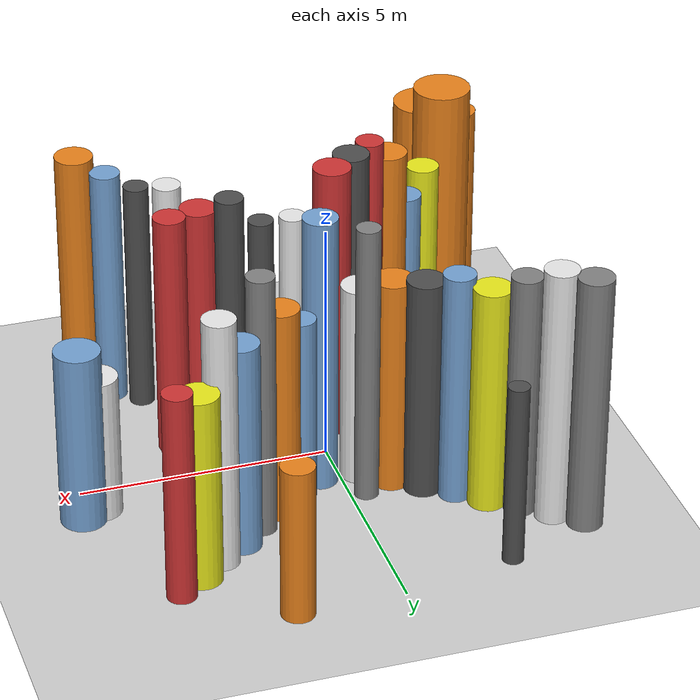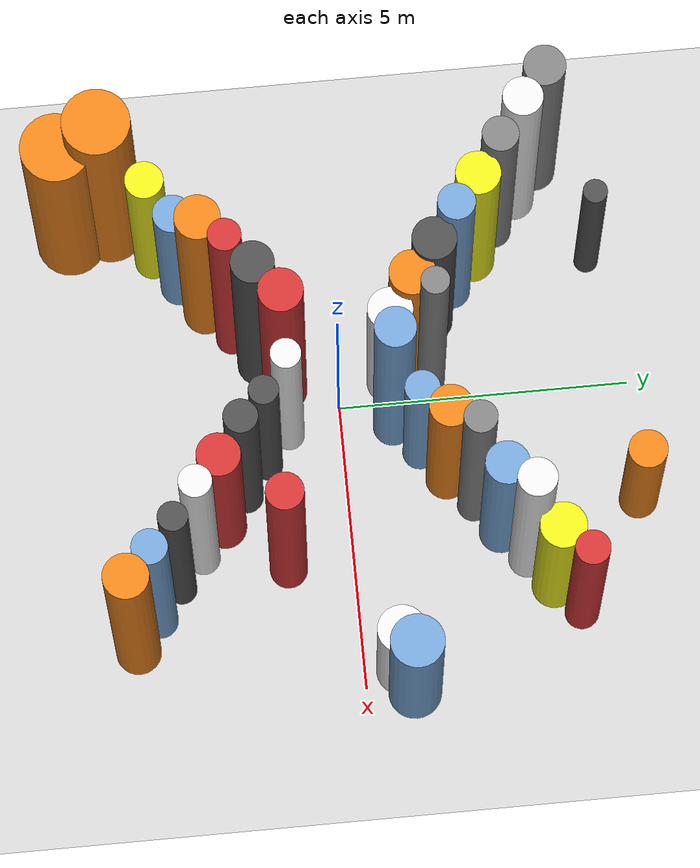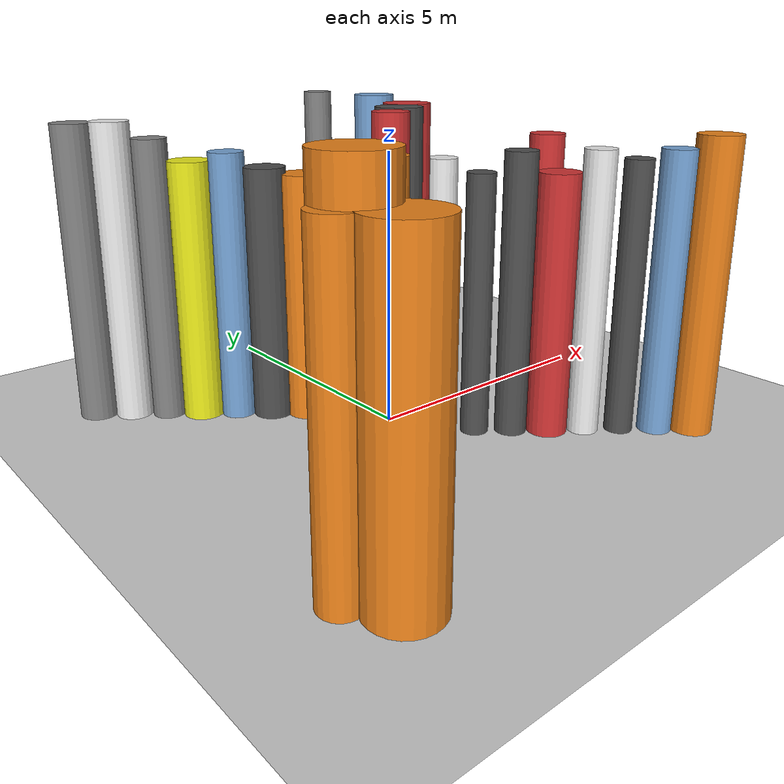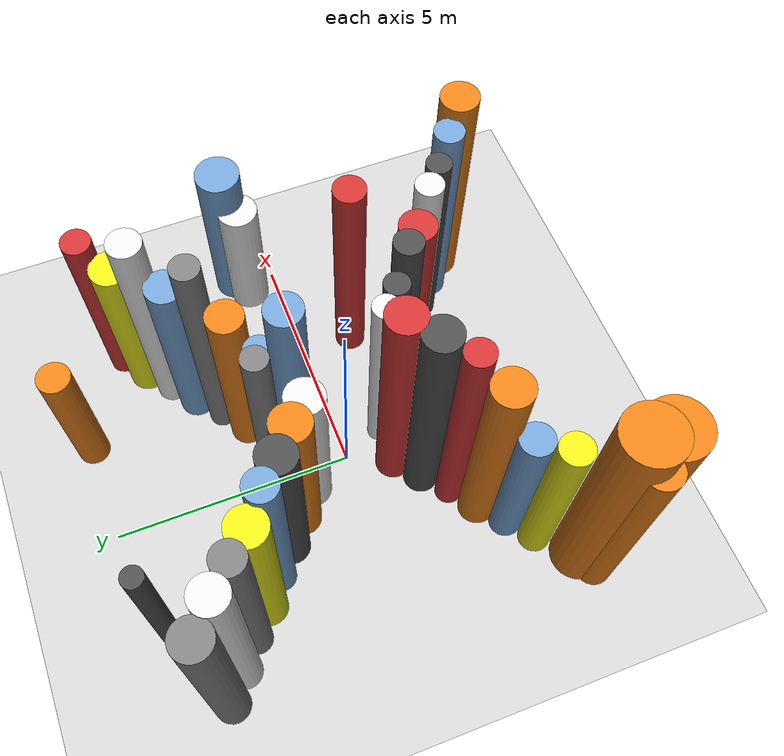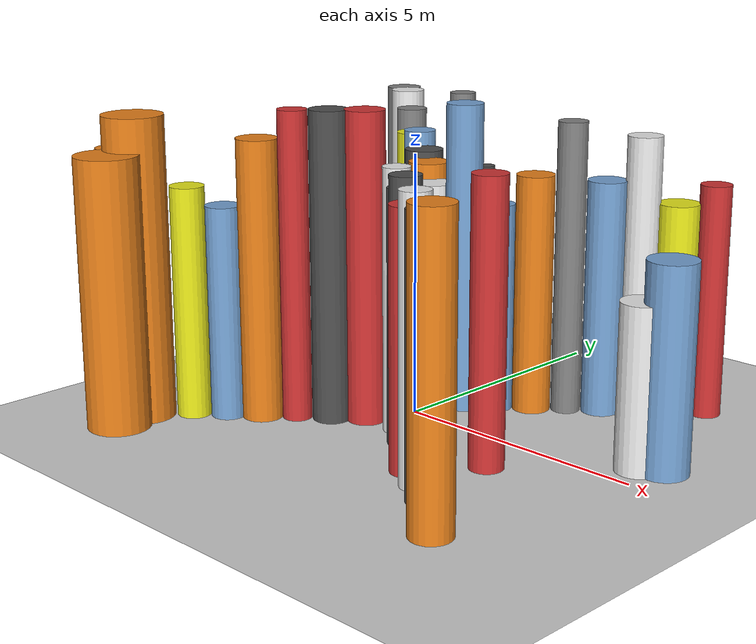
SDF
<?xml version='1.0'?>
<sdf version='1.6'>
  <world name='routeA_rl_v1__dense_recovery__rl_val__bottleneck_corridor__000017'>
    <!-- Sun light -->
    <light name='sun' type='directional'>
      <cast_shadows>1</cast_shadows>
      <pose>0 0 10 0 0 0</pose>
      <diffuse>0.8 0.8 0.8 1</diffuse>
      <specular>0.2 0.2 0.2 1</specular>
      <attenuation>
        <range>1000</range>
        <constant>0.9</constant>
        <linear>0.01</linear>
        <quadratic>0.001</quadratic>
      </attenuation>
      <direction>-0.5 0.1 -0.9</direction>
    </light>

    <!-- Ground plane -->
    <model name='ground_plane'>
      <static>1</static>
      <link name='link'>
        <collision name='collision'>
          <geometry>
            <plane>
              <normal>0 0 1</normal>
              <size>100 100</size>
            </plane>
          </geometry>
          <surface>
            <contact>
              <collide_bitmask>65535</collide_bitmask>
              <ode/>
            </contact>
            <friction>
              <ode>
                <mu>100</mu>
                <mu2>50</mu2>
              </ode>
              <torsional><ode/></torsional>
            </friction>
            <bounce/>
          </surface>
          <max_contacts>10</max_contacts>
        </collision>
        <visual name='visual'>
          <cast_shadows>0</cast_shadows>
          <geometry>
            <plane>
              <normal>0 0 1</normal>
              <size>100 100</size>
            </plane>
          </geometry>
          <material>
            <script>
              <uri>file://media/materials/scripts/gazebo.material</uri>
              <n>Gazebo/Grey</n>
            </script>
          </material>
        </visual>
      </link>
    </model>

    <!-- Environment -->
    <magnetic_field>6e-06 2.3e-05 -4.2e-05</magnetic_field>
    <atmosphere type='adiabatic'/>
    <physics name='default_physics' default='0' type='ode'>
      <gravity>0 0 -9.8</gravity>
      <max_step_size>0.004</max_step_size>
      <real_time_factor>1</real_time_factor>
      <real_time_update_rate>250</real_time_update_rate>
    </physics>
    <scene>
      <ambient>0.4 0.4 0.4 1</ambient>
      <background>0.7 0.7 0.7 1</background>
      <shadows>1</shadows>
    </scene>
    <wind/>
    <spherical_coordinates>
      <surface_model>EARTH_WGS84</surface_model>
      <latitude_deg>0</latitude_deg>
      <longitude_deg>0</longitude_deg>
      <elevation>0</elevation>
      <heading_deg>0</heading_deg>
    </spherical_coordinates>

    <!-- ============ OBSTACLES (40) ============ -->
    <model name='funnel_l_0'>
      <static>1</static>
      <link name='link'>
        <visual name='visual'>
          <geometry>
            <cylinder>
              <radius>0.3555</radius>
              <length>5.1101</length>
            </cylinder>
          </geometry>
          <material>
            <script>
              <n>Gazebo/Orange</n>
              <uri>file://media/materials/scripts/gazebo.material</uri>
            </script>
            <ambient>0.9 0.5 0.1 1</ambient>
          </material>
        </visual>
        <collision name='collision'>
          <geometry>
            <cylinder>
              <radius>0.3555</radius>
              <length>5.1101</length>
            </cylinder>
          </geometry>
          <max_contacts>10</max_contacts>
          <surface>
            <contact><ode/></contact>
            <bounce/>
            <friction>
              <ode><mu>1</mu><mu2>1</mu2></ode>
              <torsional><ode/></torsional>
            </friction>
          </surface>
        </collision>
      </link>
      <pose>-4.0000 -3.8000 2.5551 0 0 0.0000</pose>
    </model>

    <model name='funnel_r_0'>
      <static>1</static>
      <link name='link'>
        <visual name='visual'>
          <geometry>
            <cylinder>
              <radius>0.3564</radius>
              <length>5.4555</length>
            </cylinder>
          </geometry>
          <material>
            <script>
              <n>Gazebo/Grey</n>
              <uri>file://media/materials/scripts/gazebo.material</uri>
            </script>
            <ambient>0.5 0.5 0.5 1</ambient>
          </material>
        </visual>
        <collision name='collision'>
          <geometry>
            <cylinder>
              <radius>0.3564</radius>
              <length>5.4555</length>
            </cylinder>
          </geometry>
          <max_contacts>10</max_contacts>
          <surface>
            <contact><ode/></contact>
            <bounce/>
            <friction>
              <ode><mu>1</mu><mu2>1</mu2></ode>
              <torsional><ode/></torsional>
            </friction>
          </surface>
        </collision>
      </link>
      <pose>-4.0000 3.8000 2.7278 0 0 0.0000</pose>
    </model>

    <model name='funnel_l_1'>
      <static>1</static>
      <link name='link'>
        <visual name='visual'>
          <geometry>
            <cylinder>
              <radius>0.2524</radius>
              <length>5.1074</length>
            </cylinder>
          </geometry>
          <material>
            <script>
              <n>Gazebo/Red</n>
              <uri>file://media/materials/scripts/gazebo.material</uri>
            </script>
            <ambient>0.8 0.2 0.2 1</ambient>
          </material>
        </visual>
        <collision name='collision'>
          <geometry>
            <cylinder>
              <radius>0.2524</radius>
              <length>5.1074</length>
            </cylinder>
          </geometry>
          <max_contacts>10</max_contacts>
          <surface>
            <contact><ode/></contact>
            <bounce/>
            <friction>
              <ode><mu>1</mu><mu2>1</mu2></ode>
              <torsional><ode/></torsional>
            </friction>
          </surface>
        </collision>
      </link>
      <pose>-3.4857 -3.3857 2.5537 0 0 0.0000</pose>
    </model>

    <model name='funnel_r_1'>
      <static>1</static>
      <link name='link'>
        <visual name='visual'>
          <geometry>
            <cylinder>
              <radius>0.3427</radius>
              <length>5.4841</length>
            </cylinder>
          </geometry>
          <material>
            <script>
              <n>Gazebo/White</n>
              <uri>file://media/materials/scripts/gazebo.material</uri>
            </script>
            <ambient>0.9 0.9 0.9 1</ambient>
          </material>
        </visual>
        <collision name='collision'>
          <geometry>
            <cylinder>
              <radius>0.3427</radius>
              <length>5.4841</length>
            </cylinder>
          </geometry>
          <max_contacts>10</max_contacts>
          <surface>
            <contact><ode/></contact>
            <bounce/>
            <friction>
              <ode><mu>1</mu><mu2>1</mu2></ode>
              <torsional><ode/></torsional>
            </friction>
          </surface>
        </collision>
      </link>
      <pose>-3.4857 3.3857 2.7421 0 0 0.0000</pose>
    </model>

    <model name='funnel_l_2'>
      <static>1</static>
      <link name='link'>
        <visual name='visual'>
          <geometry>
            <cylinder>
              <radius>0.3266</radius>
              <length>4.4274</length>
            </cylinder>
          </geometry>
          <material>
            <script>
              <n>Gazebo/Yellow</n>
              <uri>file://media/materials/scripts/gazebo.material</uri>
            </script>
            <ambient>0.9 0.9 0.1 1</ambient>
          </material>
        </visual>
        <collision name='collision'>
          <geometry>
            <cylinder>
              <radius>0.3266</radius>
              <length>4.4274</length>
            </cylinder>
          </geometry>
          <max_contacts>10</max_contacts>
          <surface>
            <contact><ode/></contact>
            <bounce/>
            <friction>
              <ode><mu>1</mu><mu2>1</mu2></ode>
              <torsional><ode/></torsional>
            </friction>
          </surface>
        </collision>
      </link>
      <pose>-2.9714 -2.9714 2.2137 0 0 0.0000</pose>
    </model>

    <model name='funnel_r_2'>
      <static>1</static>
      <link name='link'>
        <visual name='visual'>
          <geometry>
            <cylinder>
              <radius>0.3106</radius>
              <length>5.1920</length>
            </cylinder>
          </geometry>
          <material>
            <script>
              <n>Gazebo/Grey</n>
              <uri>file://media/materials/scripts/gazebo.material</uri>
            </script>
            <ambient>0.5 0.5 0.5 1</ambient>
          </material>
        </visual>
        <collision name='collision'>
          <geometry>
            <cylinder>
              <radius>0.3106</radius>
              <length>5.1920</length>
            </cylinder>
          </geometry>
          <max_contacts>10</max_contacts>
          <surface>
            <contact><ode/></contact>
            <bounce/>
            <friction>
              <ode><mu>1</mu><mu2>1</mu2></ode>
              <torsional><ode/></torsional>
            </friction>
          </surface>
        </collision>
      </link>
      <pose>-2.9714 2.9714 2.5960 0 0 0.0000</pose>
    </model>

    <model name='funnel_l_3'>
      <static>1</static>
      <link name='link'>
        <visual name='visual'>
          <geometry>
            <cylinder>
              <radius>0.3323</radius>
              <length>4.0765</length>
            </cylinder>
          </geometry>
          <material>
            <script>
              <n>Gazebo/Blue</n>
              <uri>file://media/materials/scripts/gazebo.material</uri>
            </script>
            <ambient>0.447 0.624 0.812 1</ambient>
          </material>
        </visual>
        <collision name='collision'>
          <geometry>
            <cylinder>
              <radius>0.3323</radius>
              <length>4.0765</length>
            </cylinder>
          </geometry>
          <max_contacts>10</max_contacts>
          <surface>
            <contact><ode/></contact>
            <bounce/>
            <friction>
              <ode><mu>1</mu><mu2>1</mu2></ode>
              <torsional><ode/></torsional>
            </friction>
          </surface>
        </collision>
      </link>
      <pose>-2.4571 -2.5571 2.0382 0 0 0.0000</pose>
    </model>

    <model name='funnel_r_3'>
      <static>1</static>
      <link name='link'>
        <visual name='visual'>
          <geometry>
            <cylinder>
              <radius>0.3818</radius>
              <length>4.8031</length>
            </cylinder>
          </geometry>
          <material>
            <script>
              <n>Gazebo/Yellow</n>
              <uri>file://media/materials/scripts/gazebo.material</uri>
            </script>
            <ambient>0.9 0.9 0.1 1</ambient>
          </material>
        </visual>
        <collision name='collision'>
          <geometry>
            <cylinder>
              <radius>0.3818</radius>
              <length>4.8031</length>
            </cylinder>
          </geometry>
          <max_contacts>10</max_contacts>
          <surface>
            <contact><ode/></contact>
            <bounce/>
            <friction>
              <ode><mu>1</mu><mu2>1</mu2></ode>
              <torsional><ode/></torsional>
            </friction>
          </surface>
        </collision>
      </link>
      <pose>-2.4571 2.5571 2.4016 0 0 0.0000</pose>
    </model>

    <model name='funnel_l_4'>
      <static>1</static>
      <link name='link'>
        <visual name='visual'>
          <geometry>
            <cylinder>
              <radius>0.3885</radius>
              <length>5.3366</length>
            </cylinder>
          </geometry>
          <material>
            <script>
              <n>Gazebo/Orange</n>
              <uri>file://media/materials/scripts/gazebo.material</uri>
            </script>
            <ambient>0.9 0.5 0.1 1</ambient>
          </material>
        </visual>
        <collision name='collision'>
          <geometry>
            <cylinder>
              <radius>0.3885</radius>
              <length>5.3366</length>
            </cylinder>
          </geometry>
          <max_contacts>10</max_contacts>
          <surface>
            <contact><ode/></contact>
            <bounce/>
            <friction>
              <ode><mu>1</mu><mu2>1</mu2></ode>
              <torsional><ode/></torsional>
            </friction>
          </surface>
        </collision>
      </link>
      <pose>-1.9429 -2.1429 2.6683 0 0 0.0000</pose>
    </model>

    <model name='funnel_r_4'>
      <static>1</static>
      <link name='link'>
        <visual name='visual'>
          <geometry>
            <cylinder>
              <radius>0.3206</radius>
              <length>4.9564</length>
            </cylinder>
          </geometry>
          <material>
            <script>
              <n>Gazebo/Blue</n>
              <uri>file://media/materials/scripts/gazebo.material</uri>
            </script>
            <ambient>0.447 0.624 0.812 1</ambient>
          </material>
        </visual>
        <collision name='collision'>
          <geometry>
            <cylinder>
              <radius>0.3206</radius>
              <length>4.9564</length>
            </cylinder>
          </geometry>
          <max_contacts>10</max_contacts>
          <surface>
            <contact><ode/></contact>
            <bounce/>
            <friction>
              <ode><mu>1</mu><mu2>1</mu2></ode>
              <torsional><ode/></torsional>
            </friction>
          </surface>
        </collision>
      </link>
      <pose>-1.9429 2.1429 2.4782 0 0 0.0000</pose>
    </model>

    <model name='funnel_l_5'>
      <static>1</static>
      <link name='link'>
        <visual name='visual'>
          <geometry>
            <cylinder>
              <radius>0.2807</radius>
              <length>5.8708</length>
            </cylinder>
          </geometry>
          <material>
            <script>
              <n>Gazebo/Red</n>
              <uri>file://media/materials/scripts/gazebo.material</uri>
            </script>
            <ambient>0.8 0.2 0.2 1</ambient>
          </material>
        </visual>
        <collision name='collision'>
          <geometry>
            <cylinder>
              <radius>0.2807</radius>
              <length>5.8708</length>
            </cylinder>
          </geometry>
          <max_contacts>10</max_contacts>
          <surface>
            <contact><ode/></contact>
            <bounce/>
            <friction>
              <ode><mu>1</mu><mu2>1</mu2></ode>
              <torsional><ode/></torsional>
            </friction>
          </surface>
        </collision>
      </link>
      <pose>-1.4286 -1.7286 2.9354 0 0 0.0000</pose>
    </model>

    <model name='funnel_r_5'>
      <static>1</static>
      <link name='link'>
        <visual name='visual'>
          <geometry>
            <cylinder>
              <radius>0.3789</radius>
              <length>4.6890</length>
            </cylinder>
          </geometry>
          <material>
            <script>
              <n>Gazebo/DarkGrey</n>
              <uri>file://media/materials/scripts/gazebo.material</uri>
            </script>
            <ambient>0.3 0.3 0.3 1</ambient>
          </material>
        </visual>
        <collision name='collision'>
          <geometry>
            <cylinder>
              <radius>0.3789</radius>
              <length>4.6890</length>
            </cylinder>
          </geometry>
          <max_contacts>10</max_contacts>
          <surface>
            <contact><ode/></contact>
            <bounce/>
            <friction>
              <ode><mu>1</mu><mu2>1</mu2></ode>
              <torsional><ode/></torsional>
            </friction>
          </surface>
        </collision>
      </link>
      <pose>-1.4286 1.7286 2.3445 0 0 0.0000</pose>
    </model>

    <model name='funnel_l_6'>
      <static>1</static>
      <link name='link'>
        <visual name='visual'>
          <geometry>
            <cylinder>
              <radius>0.3647</radius>
              <length>5.8841</length>
            </cylinder>
          </geometry>
          <material>
            <script>
              <n>Gazebo/DarkGrey</n>
              <uri>file://media/materials/scripts/gazebo.material</uri>
            </script>
            <ambient>0.3 0.3 0.3 1</ambient>
          </material>
        </visual>
        <collision name='collision'>
          <geometry>
            <cylinder>
              <radius>0.3647</radius>
              <length>5.8841</length>
            </cylinder>
          </geometry>
          <max_contacts>10</max_contacts>
          <surface>
            <contact><ode/></contact>
            <bounce/>
            <friction>
              <ode><mu>1</mu><mu2>1</mu2></ode>
              <torsional><ode/></torsional>
            </friction>
          </surface>
        </collision>
      </link>
      <pose>-0.9143 -1.3143 2.9420 0 0 0.0000</pose>
    </model>

    <model name='funnel_r_6'>
      <static>1</static>
      <link name='link'>
        <visual name='visual'>
          <geometry>
            <cylinder>
              <radius>0.3927</radius>
              <length>4.5694</length>
            </cylinder>
          </geometry>
          <material>
            <script>
              <n>Gazebo/Orange</n>
              <uri>file://media/materials/scripts/gazebo.material</uri>
            </script>
            <ambient>0.9 0.5 0.1 1</ambient>
          </material>
        </visual>
        <collision name='collision'>
          <geometry>
            <cylinder>
              <radius>0.3927</radius>
              <length>4.5694</length>
            </cylinder>
          </geometry>
          <max_contacts>10</max_contacts>
          <surface>
            <contact><ode/></contact>
            <bounce/>
            <friction>
              <ode><mu>1</mu><mu2>1</mu2></ode>
              <torsional><ode/></torsional>
            </friction>
          </surface>
        </collision>
      </link>
      <pose>-0.9143 1.3143 2.2847 0 0 0.0000</pose>
    </model>

    <model name='funnel_l_7'>
      <static>1</static>
      <link name='link'>
        <visual name='visual'>
          <geometry>
            <cylinder>
              <radius>0.3774</radius>
              <length>5.8880</length>
            </cylinder>
          </geometry>
          <material>
            <script>
              <n>Gazebo/Red</n>
              <uri>file://media/materials/scripts/gazebo.material</uri>
            </script>
            <ambient>0.8 0.2 0.2 1</ambient>
          </material>
        </visual>
        <collision name='collision'>
          <geometry>
            <cylinder>
              <radius>0.3774</radius>
              <length>5.8880</length>
            </cylinder>
          </geometry>
          <max_contacts>10</max_contacts>
          <surface>
            <contact><ode/></contact>
            <bounce/>
            <friction>
              <ode><mu>1</mu><mu2>1</mu2></ode>
              <torsional><ode/></torsional>
            </friction>
          </surface>
        </collision>
      </link>
      <pose>-0.4000 -0.9000 2.9440 0 0 0.0000</pose>
    </model>

    <model name='funnel_r_7'>
      <static>1</static>
      <link name='link'>
        <visual name='visual'>
          <geometry>
            <cylinder>
              <radius>0.3844</radius>
              <length>4.2861</length>
            </cylinder>
          </geometry>
          <material>
            <script>
              <n>Gazebo/White</n>
              <uri>file://media/materials/scripts/gazebo.material</uri>
            </script>
            <ambient>0.9 0.9 0.9 1</ambient>
          </material>
        </visual>
        <collision name='collision'>
          <geometry>
            <cylinder>
              <radius>0.3844</radius>
              <length>4.2861</length>
            </cylinder>
          </geometry>
          <max_contacts>10</max_contacts>
          <surface>
            <contact><ode/></contact>
            <bounce/>
            <friction>
              <ode><mu>1</mu><mu2>1</mu2></ode>
              <torsional><ode/></torsional>
            </friction>
          </surface>
        </collision>
      </link>
      <pose>-0.4000 0.9000 2.1431 0 0 0.0000</pose>
    </model>

    <model name='funnel_out_l_0'>
      <static>1</static>
      <link name='link'>
        <visual name='visual'>
          <geometry>
            <cylinder>
              <radius>0.2609</radius>
              <length>4.9606</length>
            </cylinder>
          </geometry>
          <material>
            <script>
              <n>Gazebo/White</n>
              <uri>file://media/materials/scripts/gazebo.material</uri>
            </script>
            <ambient>0.9 0.9 0.9 1</ambient>
          </material>
        </visual>
        <collision name='collision'>
          <geometry>
            <cylinder>
              <radius>0.2609</radius>
              <length>4.9606</length>
            </cylinder>
          </geometry>
          <max_contacts>10</max_contacts>
          <surface>
            <contact><ode/></contact>
            <bounce/>
            <friction>
              <ode><mu>1</mu><mu2>1</mu2></ode>
              <torsional><ode/></torsional>
            </friction>
          </surface>
        </collision>
      </link>
      <pose>0.4000 -0.9000 2.4803 0 0 0.0000</pose>
    </model>

    <model name='funnel_out_r_0'>
      <static>1</static>
      <link name='link'>
        <visual name='visual'>
          <geometry>
            <cylinder>
              <radius>0.3492</radius>
              <length>5.8893</length>
            </cylinder>
          </geometry>
          <material>
            <script>
              <n>Gazebo/Blue</n>
              <uri>file://media/materials/scripts/gazebo.material</uri>
            </script>
            <ambient>0.447 0.624 0.812 1</ambient>
          </material>
        </visual>
        <collision name='collision'>
          <geometry>
            <cylinder>
              <radius>0.3492</radius>
              <length>5.8893</length>
            </cylinder>
          </geometry>
          <max_contacts>10</max_contacts>
          <surface>
            <contact><ode/></contact>
            <bounce/>
            <friction>
              <ode><mu>1</mu><mu2>1</mu2></ode>
              <torsional><ode/></torsional>
            </friction>
          </surface>
        </collision>
      </link>
      <pose>0.4000 0.9000 2.9447 0 0 0.0000</pose>
    </model>

    <model name='funnel_out_l_1'>
      <static>1</static>
      <link name='link'>
        <visual name='visual'>
          <geometry>
            <cylinder>
              <radius>0.2542</radius>
              <length>4.7183</length>
            </cylinder>
          </geometry>
          <material>
            <script>
              <n>Gazebo/DarkGrey</n>
              <uri>file://media/materials/scripts/gazebo.material</uri>
            </script>
            <ambient>0.3 0.3 0.3 1</ambient>
          </material>
        </visual>
        <collision name='collision'>
          <geometry>
            <cylinder>
              <radius>0.2542</radius>
              <length>4.7183</length>
            </cylinder>
          </geometry>
          <max_contacts>10</max_contacts>
          <surface>
            <contact><ode/></contact>
            <bounce/>
            <friction>
              <ode><mu>1</mu><mu2>1</mu2></ode>
              <torsional><ode/></torsional>
            </friction>
          </surface>
        </collision>
      </link>
      <pose>0.9143 -1.3143 2.3591 0 0 0.0000</pose>
    </model>

    <model name='funnel_out_r_1'>
      <static>1</static>
      <link name='link'>
        <visual name='visual'>
          <geometry>
            <cylinder>
              <radius>0.2986</radius>
              <length>4.0159</length>
            </cylinder>
          </geometry>
          <material>
            <script>
              <n>Gazebo/Blue</n>
              <uri>file://media/materials/scripts/gazebo.material</uri>
            </script>
            <ambient>0.447 0.624 0.812 1</ambient>
          </material>
        </visual>
        <collision name='collision'>
          <geometry>
            <cylinder>
              <radius>0.2986</radius>
              <length>4.0159</length>
            </cylinder>
          </geometry>
          <max_contacts>10</max_contacts>
          <surface>
            <contact><ode/></contact>
            <bounce/>
            <friction>
              <ode><mu>1</mu><mu2>1</mu2></ode>
              <torsional><ode/></torsional>
            </friction>
          </surface>
        </collision>
      </link>
      <pose>0.9143 1.3143 2.0079 0 0 0.0000</pose>
    </model>

    <model name='funnel_out_l_2'>
      <static>1</static>
      <link name='link'>
        <visual name='visual'>
          <geometry>
            <cylinder>
              <radius>0.2907</radius>
              <length>5.0801</length>
            </cylinder>
          </geometry>
          <material>
            <script>
              <n>Gazebo/DarkGrey</n>
              <uri>file://media/materials/scripts/gazebo.material</uri>
            </script>
            <ambient>0.3 0.3 0.3 1</ambient>
          </material>
        </visual>
        <collision name='collision'>
          <geometry>
            <cylinder>
              <radius>0.2907</radius>
              <length>5.0801</length>
            </cylinder>
          </geometry>
          <max_contacts>10</max_contacts>
          <surface>
            <contact><ode/></contact>
            <bounce/>
            <friction>
              <ode><mu>1</mu><mu2>1</mu2></ode>
              <torsional><ode/></torsional>
            </friction>
          </surface>
        </collision>
      </link>
      <pose>1.4286 -1.7286 2.5401 0 0 0.0000</pose>
    </model>

    <model name='funnel_out_r_2'>
      <static>1</static>
      <link name='link'>
        <visual name='visual'>
          <geometry>
            <cylinder>
              <radius>0.3644</radius>
              <length>4.5807</length>
            </cylinder>
          </geometry>
          <material>
            <script>
              <n>Gazebo/Orange</n>
              <uri>file://media/materials/scripts/gazebo.material</uri>
            </script>
            <ambient>0.9 0.5 0.1 1</ambient>
          </material>
        </visual>
        <collision name='collision'>
          <geometry>
            <cylinder>
              <radius>0.3644</radius>
              <length>4.5807</length>
            </cylinder>
          </geometry>
          <max_contacts>10</max_contacts>
          <surface>
            <contact><ode/></contact>
            <bounce/>
            <friction>
              <ode><mu>1</mu><mu2>1</mu2></ode>
              <torsional><ode/></torsional>
            </friction>
          </surface>
        </collision>
      </link>
      <pose>1.4286 1.7286 2.2904 0 0 0.0000</pose>
    </model>

    <model name='funnel_out_l_3'>
      <static>1</static>
      <link name='link'>
        <visual name='visual'>
          <geometry>
            <cylinder>
              <radius>0.3709</radius>
              <length>4.7185</length>
            </cylinder>
          </geometry>
          <material>
            <script>
              <n>Gazebo/Red</n>
              <uri>file://media/materials/scripts/gazebo.material</uri>
            </script>
            <ambient>0.8 0.2 0.2 1</ambient>
          </material>
        </visual>
        <collision name='collision'>
          <geometry>
            <cylinder>
              <radius>0.3709</radius>
              <length>4.7185</length>
            </cylinder>
          </geometry>
          <max_contacts>10</max_contacts>
          <surface>
            <contact><ode/></contact>
            <bounce/>
            <friction>
              <ode><mu>1</mu><mu2>1</mu2></ode>
              <torsional><ode/></torsional>
            </friction>
          </surface>
        </collision>
      </link>
      <pose>1.9429 -2.1429 2.3592 0 0 0.0000</pose>
    </model>

    <model name='funnel_out_r_3'>
      <static>1</static>
      <link name='link'>
        <visual name='visual'>
          <geometry>
            <cylinder>
              <radius>0.2812</radius>
              <length>5.5886</length>
            </cylinder>
          </geometry>
          <material>
            <script>
              <n>Gazebo/Grey</n>
              <uri>file://media/materials/scripts/gazebo.material</uri>
            </script>
            <ambient>0.5 0.5 0.5 1</ambient>
          </material>
        </visual>
        <collision name='collision'>
          <geometry>
            <cylinder>
              <radius>0.2812</radius>
              <length>5.5886</length>
            </cylinder>
          </geometry>
          <max_contacts>10</max_contacts>
          <surface>
            <contact><ode/></contact>
            <bounce/>
            <friction>
              <ode><mu>1</mu><mu2>1</mu2></ode>
              <torsional><ode/></torsional>
            </friction>
          </surface>
        </collision>
      </link>
      <pose>1.9429 2.1429 2.7943 0 0 0.0000</pose>
    </model>

    <model name='funnel_out_l_4'>
      <static>1</static>
      <link name='link'>
        <visual name='visual'>
          <geometry>
            <cylinder>
              <radius>0.2823</radius>
              <length>5.1044</length>
            </cylinder>
          </geometry>
          <material>
            <script>
              <n>Gazebo/White</n>
              <uri>file://media/materials/scripts/gazebo.material</uri>
            </script>
            <ambient>0.9 0.9 0.9 1</ambient>
          </material>
        </visual>
        <collision name='collision'>
          <geometry>
            <cylinder>
              <radius>0.2823</radius>
              <length>5.1044</length>
            </cylinder>
          </geometry>
          <max_contacts>10</max_contacts>
          <surface>
            <contact><ode/></contact>
            <bounce/>
            <friction>
              <ode><mu>1</mu><mu2>1</mu2></ode>
              <torsional><ode/></torsional>
            </friction>
          </surface>
        </collision>
      </link>
      <pose>2.4571 -2.5571 2.5522 0 0 0.0000</pose>
    </model>

    <model name='funnel_out_r_4'>
      <static>1</static>
      <link name='link'>
        <visual name='visual'>
          <geometry>
            <cylinder>
              <radius>0.3712</radius>
              <length>4.5006</length>
            </cylinder>
          </geometry>
          <material>
            <script>
              <n>Gazebo/Blue</n>
              <uri>file://media/materials/scripts/gazebo.material</uri>
            </script>
            <ambient>0.447 0.624 0.812 1</ambient>
          </material>
        </visual>
        <collision name='collision'>
          <geometry>
            <cylinder>
              <radius>0.3712</radius>
              <length>4.5006</length>
            </cylinder>
          </geometry>
          <max_contacts>10</max_contacts>
          <surface>
            <contact><ode/></contact>
            <bounce/>
            <friction>
              <ode><mu>1</mu><mu2>1</mu2></ode>
              <torsional><ode/></torsional>
            </friction>
          </surface>
        </collision>
      </link>
      <pose>2.4571 2.5571 2.2503 0 0 0.0000</pose>
    </model>

    <model name='funnel_out_l_5'>
      <static>1</static>
      <link name='link'>
        <visual name='visual'>
          <geometry>
            <cylinder>
              <radius>0.2535</radius>
              <length>4.9392</length>
            </cylinder>
          </geometry>
          <material>
            <script>
              <n>Gazebo/DarkGrey</n>
              <uri>file://media/materials/scripts/gazebo.material</uri>
            </script>
            <ambient>0.3 0.3 0.3 1</ambient>
          </material>
        </visual>
        <collision name='collision'>
          <geometry>
            <cylinder>
              <radius>0.2535</radius>
              <length>4.9392</length>
            </cylinder>
          </geometry>
          <max_contacts>10</max_contacts>
          <surface>
            <contact><ode/></contact>
            <bounce/>
            <friction>
              <ode><mu>1</mu><mu2>1</mu2></ode>
              <torsional><ode/></torsional>
            </friction>
          </surface>
        </collision>
      </link>
      <pose>2.9714 -2.9714 2.4696 0 0 0.0000</pose>
    </model>

    <model name='funnel_out_r_5'>
      <static>1</static>
      <link name='link'>
        <visual name='visual'>
          <geometry>
            <cylinder>
              <radius>0.3310</radius>
              <length>5.3414</length>
            </cylinder>
          </geometry>
          <material>
            <script>
              <n>Gazebo/White</n>
              <uri>file://media/materials/scripts/gazebo.material</uri>
            </script>
            <ambient>0.9 0.9 0.9 1</ambient>
          </material>
        </visual>
        <collision name='collision'>
          <geometry>
            <cylinder>
              <radius>0.3310</radius>
              <length>5.3414</length>
            </cylinder>
          </geometry>
          <max_contacts>10</max_contacts>
          <surface>
            <contact><ode/></contact>
            <bounce/>
            <friction>
              <ode><mu>1</mu><mu2>1</mu2></ode>
              <torsional><ode/></torsional>
            </friction>
          </surface>
        </collision>
      </link>
      <pose>2.9714 2.9714 2.6707 0 0 0.0000</pose>
    </model>

    <model name='funnel_out_l_6'>
      <static>1</static>
      <link name='link'>
        <visual name='visual'>
          <geometry>
            <cylinder>
              <radius>0.3031</radius>
              <length>5.1039</length>
            </cylinder>
          </geometry>
          <material>
            <script>
              <n>Gazebo/Blue</n>
              <uri>file://media/materials/scripts/gazebo.material</uri>
            </script>
            <ambient>0.447 0.624 0.812 1</ambient>
          </material>
        </visual>
        <collision name='collision'>
          <geometry>
            <cylinder>
              <radius>0.3031</radius>
              <length>5.1039</length>
            </cylinder>
          </geometry>
          <max_contacts>10</max_contacts>
          <surface>
            <contact><ode/></contact>
            <bounce/>
            <friction>
              <ode><mu>1</mu><mu2>1</mu2></ode>
              <torsional><ode/></torsional>
            </friction>
          </surface>
        </collision>
      </link>
      <pose>3.4857 -3.3857 2.5519 0 0 0.0000</pose>
    </model>

    <model name='funnel_out_r_6'>
      <static>1</static>
      <link name='link'>
        <visual name='visual'>
          <geometry>
            <cylinder>
              <radius>0.3941</radius>
              <length>4.0908</length>
            </cylinder>
          </geometry>
          <material>
            <script>
              <n>Gazebo/Yellow</n>
              <uri>file://media/materials/scripts/gazebo.material</uri>
            </script>
            <ambient>0.9 0.9 0.1 1</ambient>
          </material>
        </visual>
        <collision name='collision'>
          <geometry>
            <cylinder>
              <radius>0.3941</radius>
              <length>4.0908</length>
            </cylinder>
          </geometry>
          <max_contacts>10</max_contacts>
          <surface>
            <contact><ode/></contact>
            <bounce/>
            <friction>
              <ode><mu>1</mu><mu2>1</mu2></ode>
              <torsional><ode/></torsional>
            </friction>
          </surface>
        </collision>
      </link>
      <pose>3.4857 3.3857 2.0454 0 0 0.0000</pose>
    </model>

    <model name='funnel_out_l_7'>
      <static>1</static>
      <link name='link'>
        <visual name='visual'>
          <geometry>
            <cylinder>
              <radius>0.3861</radius>
              <length>5.3387</length>
            </cylinder>
          </geometry>
          <material>
            <script>
              <n>Gazebo/Orange</n>
              <uri>file://media/materials/scripts/gazebo.material</uri>
            </script>
            <ambient>0.9 0.5 0.1 1</ambient>
          </material>
        </visual>
        <collision name='collision'>
          <geometry>
            <cylinder>
              <radius>0.3861</radius>
              <length>5.3387</length>
            </cylinder>
          </geometry>
          <max_contacts>10</max_contacts>
          <surface>
            <contact><ode/></contact>
            <bounce/>
            <friction>
              <ode><mu>1</mu><mu2>1</mu2></ode>
              <torsional><ode/></torsional>
            </friction>
          </surface>
        </collision>
      </link>
      <pose>4.0000 -3.8000 2.6693 0 0 0.0000</pose>
    </model>

    <model name='funnel_out_r_7'>
      <static>1</static>
      <link name='link'>
        <visual name='visual'>
          <geometry>
            <cylinder>
              <radius>0.2940</radius>
              <length>4.4563</length>
            </cylinder>
          </geometry>
          <material>
            <script>
              <n>Gazebo/Red</n>
              <uri>file://media/materials/scripts/gazebo.material</uri>
            </script>
            <ambient>0.8 0.2 0.2 1</ambient>
          </material>
        </visual>
        <collision name='collision'>
          <geometry>
            <cylinder>
              <radius>0.2940</radius>
              <length>4.4563</length>
            </cylinder>
          </geometry>
          <max_contacts>10</max_contacts>
          <surface>
            <contact><ode/></contact>
            <bounce/>
            <friction>
              <ode><mu>1</mu><mu2>1</mu2></ode>
              <torsional><ode/></torsional>
            </friction>
          </surface>
        </collision>
      </link>
      <pose>4.0000 3.8000 2.2282 0 0 0.0000</pose>
    </model>

    <model name='bn_scatter_0'>
      <static>1</static>
      <link name='link'>
        <visual name='visual'>
          <geometry>
            <cylinder>
              <radius>0.4156</radius>
              <length>3.0434</length>
            </cylinder>
          </geometry>
          <material>
            <script>
              <n>Gazebo/White</n>
              <uri>file://media/materials/scripts/gazebo.material</uri>
            </script>
            <ambient>0.9 0.9 0.9 1</ambient>
          </material>
        </visual>
        <collision name='collision'>
          <geometry>
            <cylinder>
              <radius>0.4156</radius>
              <length>3.0434</length>
            </cylinder>
          </geometry>
          <max_contacts>10</max_contacts>
          <surface>
            <contact><ode/></contact>
            <bounce/>
            <friction>
              <ode><mu>1</mu><mu2>1</mu2></ode>
              <torsional><ode/></torsional>
            </friction>
          </surface>
        </collision>
      </link>
      <pose>4.7337 0.6159 1.5217 0 0 0.0000</pose>
    </model>

    <model name='bn_scatter_1'>
      <static>1</static>
      <link name='link'>
        <visual name='visual'>
          <geometry>
            <cylinder>
              <radius>0.5753</radius>
              <length>5.7532</length>
            </cylinder>
          </geometry>
          <material>
            <script>
              <n>Gazebo/Orange</n>
              <uri>file://media/materials/scripts/gazebo.material</uri>
            </script>
            <ambient>0.9 0.5 0.1 1</ambient>
          </material>
        </visual>
        <collision name='collision'>
          <geometry>
            <cylinder>
              <radius>0.5753</radius>
              <length>5.7532</length>
            </cylinder>
          </geometry>
          <max_contacts>10</max_contacts>
          <surface>
            <contact><ode/></contact>
            <bounce/>
            <friction>
              <ode><mu>1</mu><mu2>1</mu2></ode>
              <torsional><ode/></torsional>
            </friction>
          </surface>
        </collision>
      </link>
      <pose>-3.5953 -3.6623 2.8766 0 0 0.0000</pose>
    </model>

    <model name='bn_scatter_2'>
      <static>1</static>
      <link name='link'>
        <visual name='visual'>
          <geometry>
            <cylinder>
              <radius>0.2408</radius>
              <length>5.9344</length>
            </cylinder>
          </geometry>
          <material>
            <script>
              <n>Gazebo/Grey</n>
              <uri>file://media/materials/scripts/gazebo.material</uri>
            </script>
            <ambient>0.5 0.5 0.5 1</ambient>
          </material>
        </visual>
        <collision name='collision'>
          <geometry>
            <cylinder>
              <radius>0.2408</radius>
              <length>5.9344</length>
            </cylinder>
          </geometry>
          <max_contacts>10</max_contacts>
          <surface>
            <contact><ode/></contact>
            <bounce/>
            <friction>
              <ode><mu>1</mu><mu2>1</mu2></ode>
              <torsional><ode/></torsional>
            </friction>
          </surface>
        </collision>
      </link>
      <pose>-0.3148 1.6191 2.9672 0 0 0.0000</pose>
    </model>

    <model name='bn_scatter_3'>
      <static>1</static>
      <link name='link'>
        <visual name='visual'>
          <geometry>
            <cylinder>
              <radius>0.3317</radius>
              <length>3.2721</length>
            </cylinder>
          </geometry>
          <material>
            <script>
              <n>Gazebo/Orange</n>
              <uri>file://media/materials/scripts/gazebo.material</uri>
            </script>
            <ambient>0.9 0.5 0.1 1</ambient>
          </material>
        </visual>
        <collision name='collision'>
          <geometry>
            <cylinder>
              <radius>0.3317</radius>
              <length>3.2721</length>
            </cylinder>
          </geometry>
          <max_contacts>10</max_contacts>
          <surface>
            <contact><ode/></contact>
            <bounce/>
            <friction>
              <ode><mu>1</mu><mu2>1</mu2></ode>
              <torsional><ode/></torsional>
            </friction>
          </surface>
        </collision>
      </link>
      <pose>2.1055 4.9754 1.6360 0 0 0.0000</pose>
    </model>

    <model name='bn_scatter_4'>
      <static>1</static>
      <link name='link'>
        <visual name='visual'>
          <geometry>
            <cylinder>
              <radius>0.5973</radius>
              <length>5.1199</length>
            </cylinder>
          </geometry>
          <material>
            <script>
              <n>Gazebo/Orange</n>
              <uri>file://media/materials/scripts/gazebo.material</uri>
            </script>
            <ambient>0.9 0.5 0.1 1</ambient>
          </material>
        </visual>
        <collision name='collision'>
          <geometry>
            <cylinder>
              <radius>0.5973</radius>
              <length>5.1199</length>
            </cylinder>
          </geometry>
          <max_contacts>10</max_contacts>
          <surface>
            <contact><ode/></contact>
            <bounce/>
            <friction>
              <ode><mu>1</mu><mu2>1</mu2></ode>
              <torsional><ode/></torsional>
            </friction>
          </surface>
        </collision>
      </link>
      <pose>-3.4383 -4.3736 2.5599 0 0 0.0000</pose>
    </model>

    <model name='bn_scatter_5'>
      <static>1</static>
      <link name='link'>
        <visual name='visual'>
          <geometry>
            <cylinder>
              <radius>0.3217</radius>
              <length>5.2090</length>
            </cylinder>
          </geometry>
          <material>
            <script>
              <n>Gazebo/Red</n>
              <uri>file://media/materials/scripts/gazebo.material</uri>
            </script>
            <ambient>0.8 0.2 0.2 1</ambient>
          </material>
        </visual>
        <collision name='collision'>
          <geometry>
            <cylinder>
              <radius>0.3217</radius>
              <length>5.2090</length>
            </cylinder>
          </geometry>
          <max_contacts>10</max_contacts>
          <surface>
            <contact><ode/></contact>
            <bounce/>
            <friction>
              <ode><mu>1</mu><mu2>1</mu2></ode>
              <torsional><ode/></torsional>
            </friction>
          </surface>
        </collision>
      </link>
      <pose>2.7910 -1.1235 2.6045 0 0 0.0000</pose>
    </model>

    <model name='bn_scatter_6'>
      <static>1</static>
      <link name='link'>
        <visual name='visual'>
          <geometry>
            <cylinder>
              <radius>0.2085</radius>
              <length>3.8485</length>
            </cylinder>
          </geometry>
          <material>
            <script>
              <n>Gazebo/DarkGrey</n>
              <uri>file://media/materials/scripts/gazebo.material</uri>
            </script>
            <ambient>0.3 0.3 0.3 1</ambient>
          </material>
        </visual>
        <collision name='collision'>
          <geometry>
            <cylinder>
              <radius>0.2085</radius>
              <length>3.8485</length>
            </cylinder>
          </geometry>
          <max_contacts>10</max_contacts>
          <surface>
            <contact><ode/></contact>
            <bounce/>
            <friction>
              <ode><mu>1</mu><mu2>1</mu2></ode>
              <torsional><ode/></torsional>
            </friction>
          </surface>
        </collision>
      </link>
      <pose>-2.2709 4.5289 1.9242 0 0 0.0000</pose>
    </model>

    <model name='bn_scatter_7'>
      <static>1</static>
      <link name='link'>
        <visual name='visual'>
          <geometry>
            <cylinder>
              <radius>0.4551</radius>
              <length>3.8009</length>
            </cylinder>
          </geometry>
          <material>
            <script>
              <n>Gazebo/Blue</n>
              <uri>file://media/materials/scripts/gazebo.material</uri>
            </script>
            <ambient>0.447 0.624 0.812 1</ambient>
          </material>
        </visual>
        <collision name='collision'>
          <geometry>
            <cylinder>
              <radius>0.4551</radius>
              <length>3.8009</length>
            </cylinder>
          </geometry>
          <max_contacts>10</max_contacts>
          <surface>
            <contact><ode/></contact>
            <bounce/>
            <friction>
              <ode><mu>1</mu><mu2>1</mu2></ode>
              <torsional><ode/></torsional>
            </friction>
          </surface>
        </collision>
      </link>
      <pose>5.1332 0.8260 1.9005 0 0 0.0000</pose>
    </model>

    <!-- GUI camera -->
    <gui fullscreen='0'>
      <camera name='user_camera'>
        <pose>-15 0 18 0 0.85 0.15</pose>
        <view_controller>orbit</view_controller>
        <projection_type>perspective</projection_type>
      </camera>
    </gui>
  </world>
</sdf>
